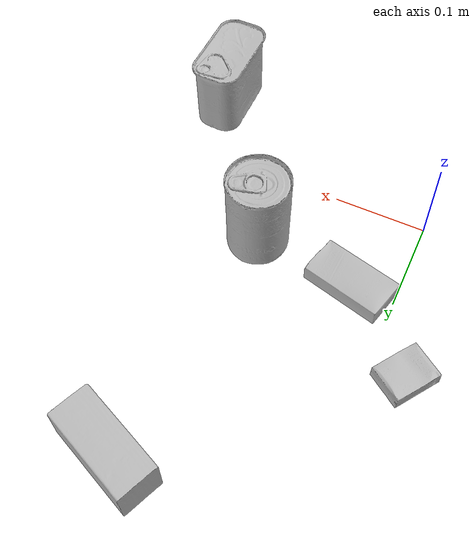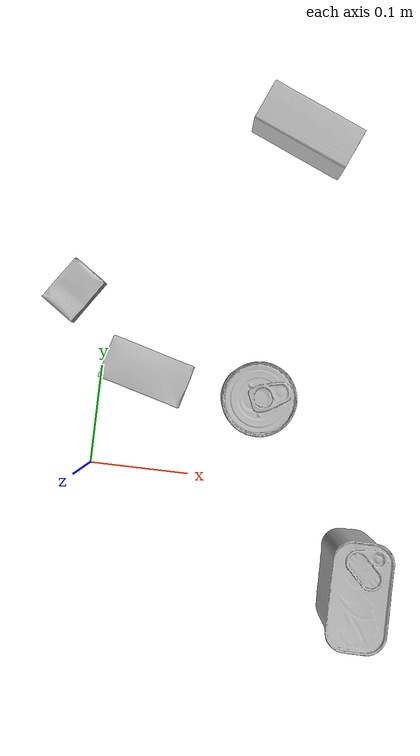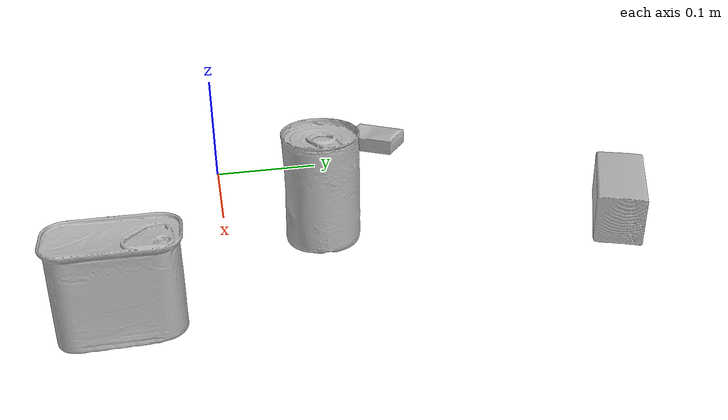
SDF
<sdf version="1.4">
  <world name="default">
    <light name="light1" type="point">
      <pose>0 0 1 0 0 0</pose>
      <diffuse>3 3 3 1</diffuse>
      <specular>3 3 3 1</specular>
    </light>
    <light name="light2" type="point">
      <pose>0 0.5 2 0 0 0</pose>
      <diffuse>1 1 1 1</diffuse>
      <specular>1 1 1 1</specular>
    </light>
    <light name="light3" type="point">
      <pose>0 0.5 2 0 0 0</pose>
      <diffuse>3 3 3 1</diffuse>
      <specular>3 3 3 1</specular>
    </light>
    <scene>
      <ambient>0.7 0.7 0.7</ambient>
    </scene>
    <model name="box1">
      <link name="link_box1">
        <collision name="default">
          <geometry>
            <mesh>
              <uri>model://sugar_box/collision_meshes/collision.obj</uri>
              <scale>0.5 0.5 0.5</scale>
            </mesh>
          </geometry>
          <surface>
            <friction>
              <ode>
                <mu>0.5</mu>
                <mu2>0.5</mu2>
              </ode>
            </friction>
          <contact>
        <ode>
            <max_vel>0</max_vel>
            <min_depth>0.0001</min_depth>
            <kp>1e8</kp>
        </ode>
    </contact></surface>
        </collision>
        <visual name="default">
          <geometry>
            <mesh>
              <uri>model://sugar_box/visual_meshes/visual.dae</uri>
              <scale>0.5 0.5 0.5</scale>
            </mesh>
          </geometry>
        </visual>
        <inertial>
          <mass>0.048160675913095474</mass>
          <pose>0.0005171863595023751 1.924554817378521e-05 -0.00018182402709499002 -0.0004046258638373534 0.0010506635215919557 0.0026153787891515894</pose>
          <inertia>
            <ixx>1.0031835e-05</ixx>
            <iyy>3.2424945e-05</iyy>
            <izz>3.8816543e-05</izz>
            <ixy>0</ixy>
            <ixz>0</ixz>
            <iyz>0</iyz>
          </inertia>
        </inertial>
      </link>
      <pose>0.04709184914827347 0.09873432666063309 0.011399304494261742 0.0007751043873094975 -0.023433153902948457 2.873222372747797</pose>
    </model>
    <model name="box2">
      <link name="link_box2">
        <collision name="default">
          <geometry>
            <mesh>
              <uri>model://cracker_box/collision_meshes/collision.obj</uri>
              <scale>0.25 0.25 0.25</scale>
            </mesh>
          </geometry>
          <surface>
            <friction>
              <ode>
                <mu>0.5</mu>
                <mu2>0.5</mu2>
              </ode>
            </friction>
          <contact>
        <ode>
            <max_vel>0</max_vel>
            <min_depth>0.0001</min_depth>
            <kp>1e8</kp>
        </ode>
    </contact></surface>
        </collision>
        <visual name="default">
          <geometry>
            <mesh>
              <uri>model://cracker_box/visual_meshes/visual.dae</uri>
              <scale>0.25 0.25 0.25</scale>
            </mesh>
          </geometry>
        </visual>
        <inertial>
          <mass>0.047952666878700256</mass>
          <pose>0.00023660370789002627 6.358561950037256e-05 -0.0004257383698131889 -0.0003162075404896153 -0.011106488669099107 0.002546795234185617</pose>
          <inertia>
            <ixx>7.623136e-06</ixx>
            <iyy>1.2587296e-05</iyy>
            <izz>1.7963224e-05</izz>
            <ixy>0</ixy>
            <ixz>0</ixz>
            <iyz>0</iyz>
          </inertia>
        </inertial>
      </link>
      <pose>-0.036541007459163666 0.17316043376922607 0.009120451286435127 -0.011787888539089984 -0.007367148490165951 0.9717963124685152</pose>
    </model>
    <model name="box3">
      <link name="link_box3">
        <collision name="default">
          <geometry>
            <mesh>
              <uri>model://wood_block/collision_meshes/collision.obj</uri>
              <scale>0.5 0.5 0.5</scale>
            </mesh>
          </geometry>
          <surface>
            <friction>
              <ode>
                <mu>0.5</mu>
                <mu2>0.5</mu2>
              </ode>
            </friction>
          <contact>
        <ode>
            <max_vel>0</max_vel>
            <min_depth>0.0001</min_depth>
            <kp>1e8</kp>
        </ode>
    </contact></surface>
        </collision>
        <visual name="default">
          <geometry>
            <mesh>
              <uri>model://wood_block/visual_meshes/visual.dae</uri>
              <scale>0.5 0.5 0.5</scale>
            </mesh>
          </geometry>
        </visual>
        <inertial>
          <mass>0.27162742614746094</mass>
          <pose>-2.9066577553749084e-06 -0.000285404734313488 0.00013204291462898254 -0.05220780121661256 -0.005192696561201931 -0.006861379819720353</pose>
          <inertia>
            <ixx>9.086965e-05</ixx>
            <iyy>0.00028705722</iyy>
            <izz>0.0002859835</izz>
            <ixy>0</ixy>
            <ixz>0</ixz>
            <iyz>0</iyz>
          </inertia>
        </inertial>
      </link>
      <pose>0.18066571652889252 0.35930484533309937 0.022629261016845703 -0.0052085653215164715 0.005718747380387328 -0.3996147749626092</pose>
    </model>
    <model name="can1">
      <link name="link_can1">
        <collision name="default">
          <geometry>
            <mesh>
              <uri>model://tomato_soup_can/collision_meshes/collision.obj</uri>
              <scale>1.0 1.0 1.0</scale>
            </mesh>
          </geometry>
          <surface>
            <friction>
              <ode>
                <mu>0.5</mu>
                <mu2>0.5</mu2>
              </ode>
            </friction>
          <contact>
        <ode>
            <max_vel>0</max_vel>
            <min_depth>0.0001</min_depth>
            <kp>1e8</kp>
        </ode>
    </contact></surface>
        </collision>
        <visual name="default">
          <geometry>
            <mesh>
              <uri>model://tomato_soup_can/visual_meshes/visual.dae</uri>
              <scale>1.0 1.0 1.0</scale>
            </mesh>
          </geometry>
        </visual>
        <inertial>
          <mass>0.33680883049964905</mass>
          <pose>0.0001265227037947625 0.0001080552683561109 -0.0017973986687138677 0.007020065933643549 0.0004229964102555597 -0.009903579397299064</pose>
          <inertia>
            <ixx>0.00036928226</ixx>
            <iyy>0.0003671481</iyy>
            <izz>0.00019139561</izz>
            <ixy>0</ixy>
            <ixz>0</ixz>
            <iyz>0</iyz>
          </inertia>
        </inertial>
      </link>
      <pose>0.15767911076545715 0.08581691235303879 0.05127401277422905 -4.5815232918620393e-07 -6.957178201179215e-07 1.6853301593430714</pose>
    </model>
    <model name="can2">
      <link name="link_can2">
        <collision name="default">
          <geometry>
            <mesh>
              <uri>model://potted_meat_can/collision_meshes/collision.obj</uri>
              <scale>1.0 1.0 1.0</scale>
            </mesh>
          </geometry>
          <surface>
            <friction>
              <ode>
                <mu>0.5</mu>
                <mu2>0.5</mu2>
              </ode>
            </friction>
          <contact>
        <ode>
            <max_vel>0</max_vel>
            <min_depth>0.0001</min_depth>
            <kp>1e8</kp>
        </ode>
    </contact></surface>
        </collision>
        <visual name="default">
          <geometry>
            <mesh>
              <uri>model://potted_meat_can/visual_meshes/visual.dae</uri>
              <scale>1.0 1.0 1.0</scale>
            </mesh>
          </geometry>
        </visual>
        <inertial>
          <mass>0.5009446144104004</mass>
          <pose>0.00022888141393195838 -5.9891164710279554e-05 -0.0006367440801113844 -0.028093347044227477 -0.007232596108467961 0.015406262357490775</pose>
          <inertia>
            <ixx>0.0006444129</ixx>
            <iyy>0.0003915297</iyy>
            <izz>0.00046868768</izz>
            <ixy>0</ixy>
            <ixz>0</ixz>
            <iyz>0</iyz>
          </inertia>
        </inertial>
      </link>
      <pose>0.2706482410430908 -0.08392009139060974 0.04212801158428192 -3.0835757059274655e-08 -4.923663441364161e-07 3.1314694175500892</pose>
    </model>
  <physics type="ode">
      <max_contacts>50</max_contacts>
      <ode>
        <solver>
          <type>quick</type>
          <iters>75</iters>
        </solver>
        <constraints>
          <contact_max_correcting_vel>0</contact_max_correcting_vel>
          <contact_surface_layer>0</contact_surface_layer>
        </constraints>
      </ode>
    </physics></world>
</sdf>
